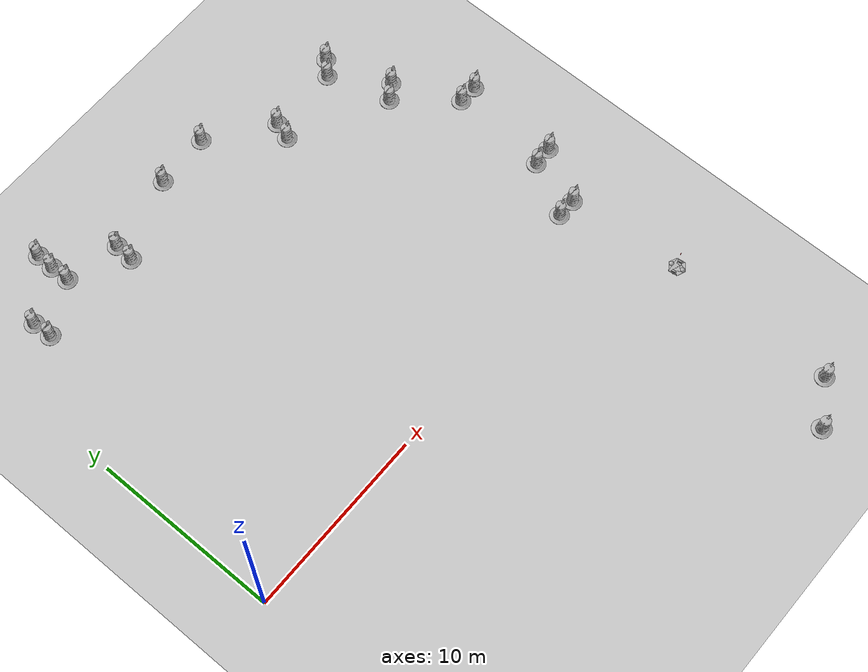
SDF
<sdf version="1.7">
 <world name="default">
  <light name="sun" type="directional">
   <pose>0 0 10 0 -0 0</pose>
   <diffuse>0.8 0.8 0.8 1</diffuse>
   <specular>0.2 0.2 0.2 1</specular>
   <attenuation>
    <range>1000</range>
    <constant>0.9</constant>
    <linear>0.01</linear>
    <quadratic>0.001</quadratic>
   </attenuation>
   <direction>-0.5 0.1 -0.9</direction>
   <spot><inner_angle>0</inner_angle><outer_angle>0</outer_angle><falloff>0</falloff></spot>
  </light>
  <gravity>0 0 -9.8</gravity>
  <magnetic_field>6e-06 2.3e-05 -4.2e-05</magnetic_field>
  <atmosphere type="adiabatic"/>
  <physics type="ode">
   <max_step_size>0.001</max_step_size>
   <real_time_factor>1</real_time_factor>
   <real_time_update_rate>1000</real_time_update_rate>
  </physics>
  <scene><ambient>0.4 0.4 0.4 1</ambient><background>0.7 0.7 0.7 1</background><shadows>1</shadows></scene>
  <spherical_coordinates>
   <surface_model>EARTH_WGS84</surface_model>
   <latitude_deg>0</latitude_deg>
   <longitude_deg>0</longitude_deg>
   <elevation>0</elevation>
   <heading_deg>0</heading_deg>
  </spherical_coordinates>
  <model name="robot">
   <link name="base_link">
    <inertial>
     <pose>0 0 0.071429 0 -0 0</pose>
     <mass>7</mass>
     <inertia><ixx>2.05383</ixx><ixy>0</ixy><ixz>0</ixz><iyy>2.32211</iyy><iyz>0</iyz><izz>2.30782</izz></inertia>
    </inertial>
    <collision name="base_link_fixed_joint_lump__collision_chassis_collision">
     <geometry><box><size>0.4878 0.8382 0.0381</size></box></geometry>
    </collision>
    <collision name="base_link_fixed_joint_lump__link_rotate1_collision_1">
     <geometry><box><size>0.4878 0.8382 0.0381</size></box></geometry>
    </collision>
    <collision name="base_link_fixed_joint_lump__link_rotate2_collision_2">
     <geometry><box><size>0.4878 0.8382 0.0381</size></box></geometry>
    </collision>
    <collision name="base_link_fixed_joint_lump__c_back_collision_3">
     <pose>-0.3175 0 0 1.5708 -0 0</pose>
     <geometry><sphere><radius>0.1263</radius></sphere></geometry>
    </collision>
    <collision name="base_link_fixed_joint_lump__c_front_collision_4">
     <pose>0.3175 0 0 1.5708 -0 0</pose>
     <geometry><sphere><radius>0.1263</radius></sphere></geometry>
    </collision>
    <visual name="base_link_visual"><geometry><box><size>0.4878 0.8382 0.0381</size></box></geometry></visual>
    <visual name="base_link_fixed_joint_lump__link_rotate1_visual_1">
     <pose>0 0 0 0 -0 2.094</pose>
     <geometry><box><size>0.4878 0.8382 0.0381</size></box></geometry>
    </visual>
    <visual name="base_link_fixed_joint_lump__link_rotate2_visual_2">
     <pose>0 0 0 0 0 -2.094</pose>
     <geometry><box><size>0.4878 0.8382 0.0381</size></box></geometry>
    </visual>
    <visual name="base_link_fixed_joint_lump__camera_link_visual_3">
     <pose>0 0 1.5 0 0.55 0</pose>
     <geometry><box><size>0.01 0.1 0.035</size></box></geometry>
     <material>
      <script><name>Gazebo/Red</name><uri>file://media/materials/scripts/gazebo.material</uri></script>
     </material>
    </visual>
    <visual name="base_link_fixed_joint_lump__c_back_visual_4">
     <pose>-0.3175 0 0 1.5708 -0 0</pose>
     <geometry><sphere><radius>0.1263</radius></sphere></geometry>
    </visual>
    <visual name="base_link_fixed_joint_lump__c_front_visual_5">
     <pose>0.3175 0 0 1.5708 -0 0</pose>
     <geometry><sphere><radius>0.1263</radius></sphere></geometry>
    </visual>
    <sensor name="camera" type="depth">
     <visualize>1</visualize>
     <update_rate>10</update_rate>
     <camera>
      <horizontal_fov>2</horizontal_fov>
      <image><format>A8R8G8B8</format><width>1920</width><height>1080</height></image>
      <clip><near>0.05</near><far>8</far></clip>
     </camera>
     <plugin name="camera_controller" filename="libgazebo_ros_camera.so">
      <frame_name>camera_link_optical</frame_name>
      <robotNamespace>/</robotNamespace>
     </plugin>
     <pose>0 0 1.5 0 0.55 0</pose>
    </sensor>
   </link>
   <joint name="joint_left_wheel" type="revolute">
    <pose relative_to="base_link">0 -0.3175 0 0 -0 0</pose>
    <parent>base_link</parent>
    <child>link_left_wheel</child>
    <axis>
     <xyz>0 1 0</xyz>
     <limit><effort>10000</effort><velocity>1000</velocity><lower>-1e+16</lower><upper>1e+16</upper></limit>
     <dynamics><spring_reference>0</spring_reference><spring_stiffness>0</spring_stiffness></dynamics>
    </axis>
   </joint>
   <link name="link_left_wheel">
    <pose relative_to="joint_left_wheel">0 0 0 0 -0 0</pose>
    <inertial>
     <pose>0 0 0 -0 1.5707 1.5707</pose>
     <mass>0.2</mass>
     <inertia>
      <ixx>0.000526667</ixx>
      <ixy>0</ixy>
      <ixz>0</ixz>
      <iyy>0.000526667</iyy>
      <iyz>0</iyz>
      <izz>0.001</izz>
     </inertia>
    </inertial>
    <collision name="link_left_wheel_collision_collision">
     <pose>0 0 0 1.57089 1.57079 -3.14159</pose>
     <geometry><cylinder><length>0.0889</length><radius>0.127</radius></cylinder></geometry>
    </collision>
    <visual name="link_left_wheel_visual_visual">
     <pose>0 0.02 0 1.57089 1.57079 -3.14159</pose>
     <geometry><cylinder><length>0.0889</length><radius>0.127</radius></cylinder></geometry>
    </visual>
   </link>
   <joint name="joint_right_wheel" type="revolute">
    <pose relative_to="base_link">0 0.3175 0 0 -0 0</pose>
    <parent>base_link</parent>
    <child>link_right_wheel</child>
    <axis>
     <xyz>0 1 0</xyz>
     <limit><effort>10000</effort><velocity>1000</velocity><lower>-1e+16</lower><upper>1e+16</upper></limit>
     <dynamics><spring_reference>0</spring_reference><spring_stiffness>0</spring_stiffness></dynamics>
    </axis>
   </joint>
   <link name="link_right_wheel">
    <pose relative_to="joint_right_wheel">0 0 0 0 -0 0</pose>
    <inertial>
     <pose>0 0 0 -0 1.5707 1.5707</pose>
     <mass>0.2</mass>
     <inertia>
      <ixx>0.000526667</ixx>
      <ixy>0</ixy>
      <ixz>0</ixz>
      <iyy>0.000526667</iyy>
      <iyz>0</iyz>
      <izz>0.001</izz>
     </inertia>
    </inertial>
    <collision name="link_right_wheel_collision_collision">
     <pose>0 0 0 1.57089 1.57079 -3.14159</pose>
     <geometry><cylinder><length>0.0889</length><radius>0.127</radius></cylinder></geometry>
    </collision>
    <visual name="link_right_wheel_visual_visual">
     <pose>0 0.02 0 1.57089 1.57079 -3.14159</pose>
     <geometry><cylinder><length>0.0889</length><radius>0.127</radius></cylinder></geometry>
    </visual>
   </link>
   <static>0</static>
   <plugin name="gazebo_ros_control" filename="libgazebo_ros_control.so">
    <robotNamespace>/</robotNamespace>
   </plugin>
   <pose>25.6913 -4.29785 0.126999 -1e-06 0.000543 1.68903</pose>
  </model>
  <model name="my_ground_plane">
   <static>1</static>
   <link name="link">
    <collision name="collision">
     <geometry><plane><normal>0 0 1</normal><size>79 57</size></plane></geometry>
     <surface><friction><ode><mu>100</mu><mu2>50</mu2></ode></friction></surface>
    </collision>
    <visual name="visual">
     <cast_shadows>0</cast_shadows>
     <geometry><plane><normal>0 0 1</normal><size>79 57</size></plane></geometry>
     <material>
      <script>
       <uri>model://my_ground_plane/materials/scripts</uri>
       <uri>model://my_ground_plane/materials/textures/</uri>
       <name>MyGroundPlane/Image</name>
      </script>
     </material>
    </visual>
   </link>
   <pose>-0.166074 0.494407 0 0 -0 0</pose>
  </model>
  <model name="Construction Barrel">
   <link name="link">
    <inertial>
     <pose>0 0 0.4 0 -0 0</pose>
     <mass>500</mass>
     <inertia><ixx>51.2096</ixx><iyy>51.2096</iyy><izz>25</izz><ixy>0</ixy><ixz>0</ixz><iyz>0</iyz></inertia>
    </inertial>
    <collision name="collision">
     <geometry><mesh><uri>model://construction_barrel/meshes/construction_barrel.dae</uri></mesh></geometry>
    </collision>
    <visual name="visual">
     <geometry><mesh><uri>model://construction_barrel/meshes/construction_barrel.dae</uri></mesh></geometry>
    </visual>
   </link>
   <pose>24.2196 1.95385 0 0 0 -0.011428</pose>
  </model>
  <model name="Construction Barrel_0">
   <link name="link">
    <inertial>
     <pose>0 0 0.4 0 -0 0</pose>
     <mass>500</mass>
     <inertia><ixx>51.2096</ixx><iyy>51.2096</iyy><izz>25</izz><ixy>0</ixy><ixz>0</ixz><iyz>0</iyz></inertia>
    </inertial>
    <collision name="collision">
     <geometry><mesh><uri>model://construction_barrel/meshes/construction_barrel.dae</uri></mesh></geometry>
    </collision>
    <visual name="visual">
     <geometry><mesh><uri>model://construction_barrel/meshes/construction_barrel.dae</uri></mesh></geometry>
    </visual>
   </link>
   <pose>26.8043 4.72489 -0 0 -0 0.016488</pose>
  </model>
  <model name="Construction Barrel_1">
   <link name="link">
    <inertial>
     <pose>0 0 0.4 0 -0 0</pose>
     <mass>500</mass>
     <inertia><ixx>51.2096</ixx><iyy>51.2096</iyy><izz>25</izz><ixy>0</ixy><ixz>0</ixz><iyz>0</iyz></inertia>
    </inertial>
    <collision name="collision">
     <geometry><mesh><uri>model://construction_barrel/meshes/construction_barrel.dae</uri></mesh></geometry>
    </collision>
    <visual name="visual">
     <geometry><mesh><uri>model://construction_barrel/meshes/construction_barrel.dae</uri></mesh></geometry>
    </visual>
   </link>
   <pose>25.7505 4.66777 -0 0 0 -0.032383</pose>
  </model>
  <model name="Construction Barrel_2">
   <link name="link">
    <inertial>
     <pose>0 0 0.4 0 -0 0</pose>
     <mass>500</mass>
     <inertia><ixx>51.2096</ixx><iyy>51.2096</iyy><izz>25</izz><ixy>0</ixy><ixz>0</ixz><iyz>0</iyz></inertia>
    </inertial>
    <collision name="collision">
     <geometry><mesh><uri>model://construction_barrel/meshes/construction_barrel.dae</uri></mesh></geometry>
    </collision>
    <visual name="visual">
     <geometry><mesh><uri>model://construction_barrel/meshes/construction_barrel.dae</uri></mesh></geometry>
    </visual>
   </link>
   <pose>25.2523 1.94057 -2e-06 6e-06 -3e-06 0.004161</pose>
  </model>
  <model name="Construction Barrel_3">
   <link name="link">
    <inertial>
     <pose>0 0 0.4 0 -0 0</pose>
     <mass>500</mass>
     <inertia><ixx>51.2096</ixx><iyy>51.2096</iyy><izz>25</izz><ixy>0</ixy><ixz>0</ixz><iyz>0</iyz></inertia>
    </inertial>
    <collision name="collision">
     <geometry><mesh><uri>model://construction_barrel/meshes/construction_barrel.dae</uri></mesh></geometry>
    </collision>
    <visual name="visual">
     <geometry><mesh><uri>model://construction_barrel/meshes/construction_barrel.dae</uri></mesh></geometry>
    </visual>
   </link>
   <pose>23.7577 12.7929 0 0 -0 0.012136</pose>
  </model>
  <model name="Construction Barrel_4">
   <link name="link">
    <inertial>
     <pose>0 0 0.4 0 -0 0</pose>
     <mass>500</mass>
     <inertia><ixx>51.2096</ixx><iyy>51.2096</iyy><izz>25</izz><ixy>0</ixy><ixz>0</ixz><iyz>0</iyz></inertia>
    </inertial>
    <collision name="collision">
     <geometry><mesh><uri>model://construction_barrel/meshes/construction_barrel.dae</uri></mesh></geometry>
    </collision>
    <visual name="visual">
     <geometry><mesh><uri>model://construction_barrel/meshes/construction_barrel.dae</uri></mesh></geometry>
    </visual>
   </link>
   <pose>24.586 13.3782 -3e-06 -9e-06 -4e-06 -0.041182</pose>
  </model>
  <model name="Construction Barrel_5">
   <link name="link">
    <inertial>
     <pose>0 0 0.4 0 -0 0</pose>
     <mass>500</mass>
     <inertia><ixx>51.2096</ixx><iyy>51.2096</iyy><izz>25</izz><ixy>0</ixy><ixz>0</ixz><iyz>0</iyz></inertia>
    </inertial>
    <collision name="collision">
     <geometry><mesh><uri>model://construction_barrel/meshes/construction_barrel.dae</uri></mesh></geometry>
    </collision>
    <visual name="visual">
     <geometry><mesh><uri>model://construction_barrel/meshes/construction_barrel.dae</uri></mesh></geometry>
    </visual>
   </link>
   <pose>23.4871 16.9108 -2e-06 7e-06 -4e-06 0.026822</pose>
  </model>
  <model name="Construction Barrel_6">
   <link name="link">
    <inertial>
     <pose>0 0 0.4 0 -0 0</pose>
     <mass>500</mass>
     <inertia><ixx>51.2096</ixx><iyy>51.2096</iyy><izz>25</izz><ixy>0</ixy><ixz>0</ixz><iyz>0</iyz></inertia>
    </inertial>
    <collision name="collision">
     <geometry><mesh><uri>model://construction_barrel/meshes/construction_barrel.dae</uri></mesh></geometry>
    </collision>
    <visual name="visual">
     <geometry><mesh><uri>model://construction_barrel/meshes/construction_barrel.dae</uri></mesh></geometry>
    </visual>
   </link>
   <pose>22.7676 16.1898 -1e-06 4e-06 -2e-06 0.014133</pose>
  </model>
  <model name="Construction Barrel_7">
   <link name="link">
    <inertial>
     <pose>0 0 0.4 0 -0 0</pose>
     <mass>500</mass>
     <inertia><ixx>51.2096</ixx><iyy>51.2096</iyy><izz>25</izz><ixy>0</ixy><ixz>0</ixz><iyz>0</iyz></inertia>
    </inertial>
    <collision name="collision">
     <geometry><mesh><uri>model://construction_barrel/meshes/construction_barrel.dae</uri></mesh></geometry>
    </collision>
    <visual name="visual">
     <geometry><mesh><uri>model://construction_barrel/meshes/construction_barrel.dae</uri></mesh></geometry>
    </visual>
   </link>
   <pose>18.6918 15.3463 -2e-06 8e-06 -4e-06 0.000153</pose>
  </model>
  <model name="Construction Barrel_8">
   <link name="link">
    <inertial>
     <pose>0 0 0.4 0 -0 0</pose>
     <mass>500</mass>
     <inertia><ixx>51.2096</ixx><iyy>51.2096</iyy><izz>25</izz><ixy>0</ixy><ixz>0</ixz><iyz>0</iyz></inertia>
    </inertial>
    <collision name="collision">
     <geometry><mesh><uri>model://construction_barrel/meshes/construction_barrel.dae</uri></mesh></geometry>
    </collision>
    <visual name="visual">
     <geometry><mesh><uri>model://construction_barrel/meshes/construction_barrel.dae</uri></mesh></geometry>
    </visual>
   </link>
   <pose>19.0149 16.3073 -2e-06 7e-06 -4e-06 -0.001058</pose>
  </model>
  <model name="Construction Barrel_9">
   <link name="link">
    <inertial>
     <pose>0 0 0.4 0 -0 0</pose>
     <mass>500</mass>
     <inertia><ixx>51.2096</ixx><iyy>51.2096</iyy><izz>25</izz><ixy>0</ixy><ixz>0</ixz><iyz>0</iyz></inertia>
    </inertial>
    <collision name="collision">
     <geometry><mesh><uri>model://construction_barrel/meshes/construction_barrel.dae</uri></mesh></geometry>
    </collision>
    <visual name="visual">
     <geometry><mesh><uri>model://construction_barrel/meshes/construction_barrel.dae</uri></mesh></geometry>
    </visual>
   </link>
   <pose>15.769 18.6255 -1e-06 1e-06 -9e-06 -4.7e-05</pose>
  </model>
  <model name="Construction Barrel_10">
   <link name="link">
    <inertial>
     <pose>0 0 0.4 0 -0 0</pose>
     <mass>500</mass>
     <inertia><ixx>51.2096</ixx><iyy>51.2096</iyy><izz>25</izz><ixy>0</ixy><ixz>0</ixz><iyz>0</iyz></inertia>
    </inertial>
    <collision name="collision">
     <geometry><mesh><uri>model://construction_barrel/meshes/construction_barrel.dae</uri></mesh></geometry>
    </collision>
    <visual name="visual">
     <geometry><mesh><uri>model://construction_barrel/meshes/construction_barrel.dae</uri></mesh></geometry>
    </visual>
   </link>
   <pose>12.7897 18.4825 -1e-06 1e-06 -9e-06 -4.1e-05</pose>
  </model>
  <model name="Construction Barrel_11">
   <link name="link">
    <inertial>
     <pose>0 0 0.4 0 -0 0</pose>
     <mass>500</mass>
     <inertia><ixx>51.2096</ixx><iyy>51.2096</iyy><izz>25</izz><ixy>0</ixy><ixz>0</ixz><iyz>0</iyz></inertia>
    </inertial>
    <collision name="collision">
     <geometry><mesh><uri>model://construction_barrel/meshes/construction_barrel.dae</uri></mesh></geometry>
    </collision>
    <visual name="visual">
     <geometry><mesh><uri>model://construction_barrel/meshes/construction_barrel.dae</uri></mesh></geometry>
    </visual>
   </link>
   <pose>8.60367 16.7029 -1e-06 -3e-06 -1e-05 -0.300263</pose>
  </model>
  <model name="Construction Barrel_12">
   <link name="link">
    <inertial>
     <pose>0 0 0.4 0 -0 0</pose>
     <mass>500</mass>
     <inertia><ixx>51.2096</ixx><iyy>51.2096</iyy><izz>25</izz><ixy>0</ixy><ixz>0</ixz><iyz>0</iyz></inertia>
    </inertial>
    <collision name="collision">
     <geometry><mesh><uri>model://construction_barrel/meshes/construction_barrel.dae</uri></mesh></geometry>
    </collision>
    <visual name="visual">
     <geometry><mesh><uri>model://construction_barrel/meshes/construction_barrel.dae</uri></mesh></geometry>
    </visual>
   </link>
   <pose>8.69168 17.7617 -2e-06 7e-06 -4e-06 -0.554481</pose>
  </model>
  <model name="Construction Barrel_13">
   <link name="link">
    <inertial>
     <pose>0 0 0.4 0 -0 0</pose>
     <mass>500</mass>
     <inertia><ixx>51.2096</ixx><iyy>51.2096</iyy><izz>25</izz><ixy>0</ixy><ixz>0</ixz><iyz>0</iyz></inertia>
    </inertial>
    <collision name="collision">
     <geometry><mesh><uri>model://construction_barrel/meshes/construction_barrel.dae</uri></mesh></geometry>
    </collision>
    <visual name="visual">
     <geometry><mesh><uri>model://construction_barrel/meshes/construction_barrel.dae</uri></mesh></geometry>
    </visual>
   </link>
   <pose>5.79313 20.3799 1e-06 9e-06 2e-06 0.09418</pose>
  </model>
  <model name="Construction Barrel_14">
   <link name="link">
    <inertial>
     <pose>0 0 0.4 0 -0 0</pose>
     <mass>500</mass>
     <inertia><ixx>51.2096</ixx><iyy>51.2096</iyy><izz>25</izz><ixy>0</ixy><ixz>0</ixz><iyz>0</iyz></inertia>
    </inertial>
    <collision name="collision">
     <geometry><mesh><uri>model://construction_barrel/meshes/construction_barrel.dae</uri></mesh></geometry>
    </collision>
    <visual name="visual">
     <geometry><mesh><uri>model://construction_barrel/meshes/construction_barrel.dae</uri></mesh></geometry>
    </visual>
   </link>
   <pose>5.75847 19.3901 0.013846 0.025336 0.010371 -0.355411</pose>
  </model>
  <model name="Construction Barrel_15">
   <link name="link">
    <inertial>
     <pose>0 0 0.4 0 -0 0</pose>
     <mass>500</mass>
     <inertia><ixx>51.2096</ixx><iyy>51.2096</iyy><izz>25</izz><ixy>0</ixy><ixz>0</ixz><iyz>0</iyz></inertia>
    </inertial>
    <collision name="collision">
     <geometry><mesh><uri>model://construction_barrel/meshes/construction_barrel.dae</uri></mesh></geometry>
    </collision>
    <visual name="visual">
     <geometry><mesh><uri>model://construction_barrel/meshes/construction_barrel.dae</uri></mesh></geometry>
    </visual>
   </link>
   <pose>5.7876 18.3491 -2e-06 0 7e-06 -0.167242</pose>
  </model>
  <model name="Construction Barrel_16">
   <link name="link">
    <inertial>
     <pose>0 0 0.4 0 -0 0</pose>
     <mass>500</mass>
     <inertia><ixx>51.2096</ixx><iyy>51.2096</iyy><izz>25</izz><ixy>0</ixy><ixz>0</ixz><iyz>0</iyz></inertia>
    </inertial>
    <collision name="collision">
     <geometry><mesh><uri>model://construction_barrel/meshes/construction_barrel.dae</uri></mesh></geometry>
    </collision>
    <visual name="visual">
     <geometry><mesh><uri>model://construction_barrel/meshes/construction_barrel.dae</uri></mesh></geometry>
    </visual>
   </link>
   <pose>3.10586 16.8655 -0 0 -0 -3.3e-05</pose>
  </model>
  <model name="Construction Barrel_17">
   <link name="link">
    <inertial>
     <pose>0 0 0.4 0 -0 0</pose>
     <mass>500</mass>
     <inertia><ixx>51.2096</ixx><iyy>51.2096</iyy><izz>25</izz><ixy>0</ixy><ixz>0</ixz><iyz>0</iyz></inertia>
    </inertial>
    <collision name="collision">
     <geometry><mesh><uri>model://construction_barrel/meshes/construction_barrel.dae</uri></mesh></geometry>
    </collision>
    <visual name="visual">
     <geometry><mesh><uri>model://construction_barrel/meshes/construction_barrel.dae</uri></mesh></geometry>
    </visual>
   </link>
   <pose>3.05325 17.934 -1e-06 1e-06 -9e-06 -3.1e-05</pose>
  </model>
  <model name="Construction Barrel_18">
   <link name="link">
    <inertial>
     <pose>0 0 0.4 0 -0 0</pose>
     <mass>500</mass>
     <inertia><ixx>51.2096</ixx><iyy>51.2096</iyy><izz>25</izz><ixy>0</ixy><ixz>0</ixz><iyz>0</iyz></inertia>
    </inertial>
    <collision name="collision">
     <geometry><mesh><uri>model://construction_barrel/meshes/construction_barrel.dae</uri></mesh></geometry>
    </collision>
    <visual name="visual">
     <geometry><mesh><uri>model://construction_barrel/meshes/construction_barrel.dae</uri></mesh></geometry>
    </visual>
   </link>
   <pose>23.3603 -14.6627 0 0 0 -3.1e-05</pose>
  </model>
  <model name="Construction Barrel_19">
   <link name="link">
    <inertial>
     <pose>0 0 0.4 0 -0 0</pose>
     <mass>500</mass>
     <inertia><ixx>51.2096</ixx><iyy>51.2096</iyy><izz>25</izz><ixy>0</ixy><ixz>0</ixz><iyz>0</iyz></inertia>
    </inertial>
    <collision name="collision">
     <geometry><mesh><uri>model://construction_barrel/meshes/construction_barrel.dae</uri></mesh></geometry>
    </collision>
    <visual name="visual">
     <geometry><mesh><uri>model://construction_barrel/meshes/construction_barrel.dae</uri></mesh></geometry>
    </visual>
   </link>
   <pose>25.6198 -13.2452 0 0 0 -5.2e-05</pose>
  </model>
  <model name="Construction Barrel_20">
   <link name="link">
    <inertial>
     <pose>0 0 0.4 0 -0 0</pose>
     <mass>500</mass>
     <inertia><ixx>51.2096</ixx><iyy>51.2096</iyy><izz>25</izz><ixy>0</ixy><ixz>0</ixz><iyz>0</iyz></inertia>
    </inertial>
    <collision name="collision">
     <geometry><mesh><uri>model://construction_barrel/meshes/construction_barrel.dae</uri></mesh></geometry>
    </collision>
    <visual name="visual">
     <geometry><mesh><uri>model://construction_barrel/meshes/construction_barrel.dae</uri></mesh></geometry>
    </visual>
   </link>
   <pose>26.1149 9.9238 0 0 0 -0.099188</pose>
  </model>
  <model name="Construction Barrel_21">
   <link name="link">
    <inertial>
     <pose>0 0 0.4 0 -0 0</pose>
     <mass>500</mass>
     <inertia><ixx>51.2096</ixx><iyy>51.2096</iyy><izz>25</izz><ixy>0</ixy><ixz>0</ixz><iyz>0</iyz></inertia>
    </inertial>
    <collision name="collision">
     <geometry><mesh><uri>model://construction_barrel/meshes/construction_barrel.dae</uri></mesh></geometry>
    </collision>
    <visual name="visual">
     <geometry><mesh><uri>model://construction_barrel/meshes/construction_barrel.dae</uri></mesh></geometry>
    </visual>
   </link>
   <pose>27.146 9.9078 -2e-06 8e-06 -4e-06 0.10964</pose>
  </model>
 </world>
</sdf>
